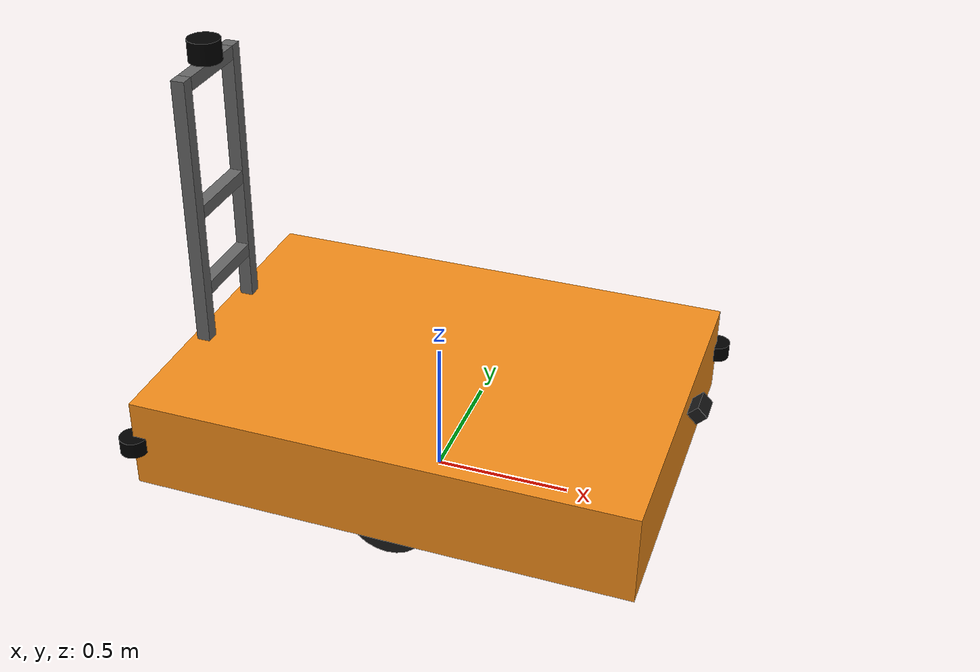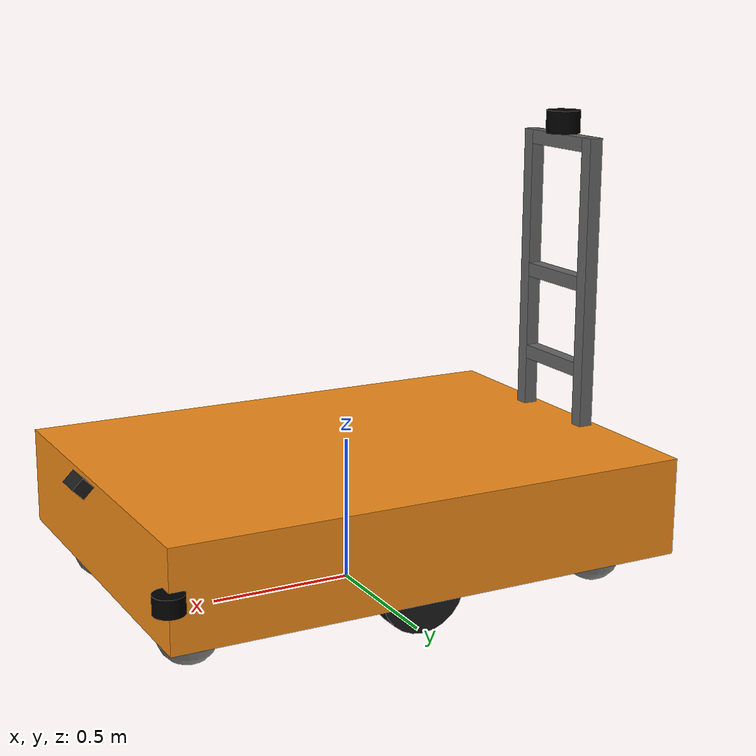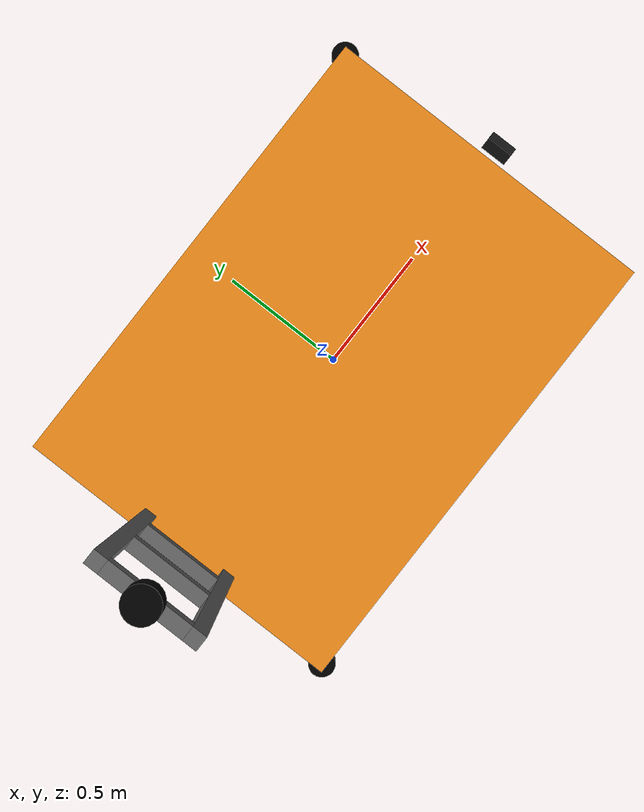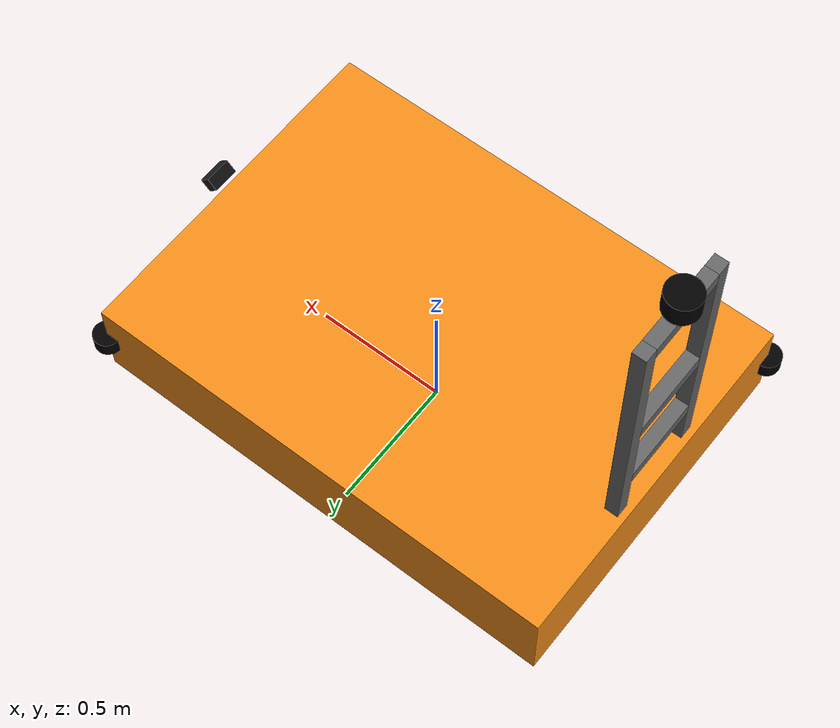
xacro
<?xml version="1.0"?>
<robot name="amr">

    <!-- Base footprint -->
    <link name="base_footprint">
        <inertial>
            <origin xyz="0 0 0.317" rpy="0 0 0"/>
            <mass value="250.0"/>
            <inertia ixx="45.0" ixy="0.0" ixz="0.0" iyy="75.0" iyz="0.0" izz="105.0"/>
        </inertial>
        <collision>
            <origin xyz="0 0 0.317" rpy="0 0 0"/>
            <geometry>
                <box size="1.8 1.3 0.334"/>
            </geometry>
        </collision>
        <visual>
            <origin xyz="0 0 0.317" rpy="0 0 0"/>
            <geometry>
                <box size="1.8 1.3 0.334"/>
            </geometry>
        </visual>
    </link>

    <gazebo reference="base_footprint">
        <material>Gazebo/Orange</material>
    </gazebo>

    <!-- Left wheel -->
    <link name="left_wheel">
        <inertial>
            <origin xyz="0 0 0" rpy="1.5708 0 0"/>
            <mass value="5.0"/>
            <inertia ixx="0.03" ixy="0.0" ixz="0.0" iyy="0.03" iyz="0.0" izz="0.05"/>
        </inertial>
        <visual>
            <origin xyz="0 0 0" rpy="1.5708 0 0"/>
            <geometry>
                <cylinder radius="0.15" length="0.08"/>
            </geometry>
            <material name="black">
                <color rgba="0.1 0.1 0.1 1.0"/>
            </material>
        </visual>
        <collision>
            <origin xyz="0 0 0" rpy="1.5708 0 0"/>
            <geometry>
                <cylinder radius="0.15" length="0.08"/>
            </geometry>
        </collision>
    </link>

    <joint name="left_wheel_joint" type="continuous">
        <parent link="base_footprint"/>
        <child link="left_wheel"/>
        <origin xyz="0 0.5 0.15" rpy="0 0 0"/>
        <axis xyz="0 1 0"/>
    </joint>

    <!-- Right wheel -->
    <link name="right_wheel">
        <inertial>
            <origin xyz="0 0 0" rpy="1.5708 0 0"/>
            <mass value="5.0"/>
            <inertia ixx="0.03" ixy="0.0" ixz="0.0" iyy="0.03" iyz="0.0" izz="0.05"/>
        </inertial>
        <visual>
            <origin xyz="0 0 0" rpy="1.5708 0 0"/>
            <geometry>
                <cylinder radius="0.15" length="0.08"/>
            </geometry>
            <material name="black">
                <color rgba="0.1 0.1 0.1 1.0"/>
            </material>
        </visual>
        <collision>
            <origin xyz="0 0 0" rpy="1.5708 0 0"/>
            <geometry>
                <cylinder radius="0.15" length="0.08"/>
            </geometry>
        </collision>
    </link>

    <joint name="right_wheel_joint" type="continuous">
        <parent link="base_footprint"/>
        <child link="right_wheel"/>
        <origin xyz="0 -0.5 0.15" rpy="0 0 0"/>
        <axis xyz="0 1 0"/>
    </joint>

    <!-- Front-left caster wheel -->
    <link name="front_left_caster_wheel">
        <inertial>
            <origin xyz="0 0 0" rpy="0 0 0"/>
            <mass value="1.0"/>
            <inertia ixx="0.004" ixy="0.0" ixz="0.0" iyy="0.004" iyz="0.0" izz="0.004"/>
        </inertial>
        <visual>
            <origin xyz="0 0 0" rpy="0 0 0"/>
            <geometry>
                <sphere radius="0.10"/>
            </geometry>
            <material name="grey">
                <color rgba="0.5 0.5 0.5 1.0"/>
            </material>
        </visual>
        <collision>
            <origin xyz="0 0 0" rpy="0 0 0"/>
            <geometry>
                <sphere radius="0.10"/>
            </geometry>
        </collision>
    </link>

    <joint name="front_left_caster_joint" type="fixed">
        <parent link="base_footprint"/>
        <child link="front_left_caster_wheel"/>
        <origin xyz="0.75 0.40 0.10" rpy="0 0 0"/>
    </joint>

    <gazebo reference="front_left_caster_wheel">
        <mu1>0.0</mu1>
        <mu2>0.0</mu2>
        <material>Gazebo/DarkGrey</material>
    </gazebo>

    <!-- Front-right caster wheel -->
    <link name="front_right_caster_wheel">
        <inertial>
            <origin xyz="0 0 0" rpy="0 0 0"/>
            <mass value="1.0"/>
            <inertia ixx="0.004" ixy="0.0" ixz="0.0" iyy="0.004" iyz="0.0" izz="0.004"/>
        </inertial>
        <visual>
            <origin xyz="0 0 0" rpy="0 0 0"/>
            <geometry>
                <sphere radius="0.10"/>
            </geometry>
            <material name="grey">
                <color rgba="0.5 0.5 0.5 1.0"/>
            </material>
        </visual>
        <collision>
            <origin xyz="0 0 0" rpy="0 0 0"/>
            <geometry>
                <sphere radius="0.10"/>
            </geometry>
        </collision>
    </link>

    <joint name="front_right_caster_joint" type="fixed">
        <parent link="base_footprint"/>
        <child link="front_right_caster_wheel"/>
        <origin xyz="0.75 -0.40 0.10" rpy="0 0 0"/>
    </joint>

    <gazebo reference="front_right_caster_wheel">
        <mu1>0.0</mu1>
        <mu2>0.0</mu2>
        <material>Gazebo/DarkGrey</material>
    </gazebo>

    <!-- Rear-left caster wheel -->
    <link name="rear_left_caster_wheel">
        <inertial>
            <origin xyz="0 0 0" rpy="0 0 0"/>
            <mass value="1.0"/>
            <inertia ixx="0.004" ixy="0.0" ixz="0.0" iyy="0.004" iyz="0.0" izz="0.004"/>
        </inertial>
        <visual>
            <origin xyz="0 0 0" rpy="0 0 0"/>
            <geometry>
                <sphere radius="0.10"/>
            </geometry>
            <material name="grey">
                <color rgba="0.5 0.5 0.5 1.0"/>
            </material>
        </visual>
        <collision>
            <origin xyz="0 0 0" rpy="0 0 0"/>
            <geometry>
                <sphere radius="0.10"/>
            </geometry>
        </collision>
    </link>

    <joint name="rear_left_caster_joint" type="fixed">
        <parent link="base_footprint"/>
        <child link="rear_left_caster_wheel"/>
        <origin xyz="-0.75 0.40 0.10" rpy="0 0 0"/>
    </joint>

    <gazebo reference="rear_left_caster_wheel">
        <mu1>0.0</mu1>
        <mu2>0.0</mu2>
        <material>Gazebo/DarkGrey</material>
    </gazebo>

    <!-- Rear-right caster wheel -->
    <link name="rear_right_caster_wheel">
        <inertial>
            <origin xyz="0 0 0" rpy="0 0 0"/>
            <mass value="1.0"/>
            <inertia ixx="0.004" ixy="0.0" ixz="0.0" iyy="0.004" iyz="0.0" izz="0.004"/>
        </inertial>
        <visual>
            <origin xyz="0 0 0" rpy="0 0 0"/>
            <geometry>
                <sphere radius="0.10"/>
            </geometry>
            <material name="grey">
                <color rgba="0.5 0.5 0.5 1.0"/>
            </material>
        </visual>
        <collision>
            <origin xyz="0 0 0" rpy="0 0 0"/>
            <geometry>
                <sphere radius="0.10"/>
            </geometry>
        </collision>
    </link>

    <joint name="rear_right_caster_joint" type="fixed">
        <parent link="base_footprint"/>
        <child link="rear_right_caster_wheel"/>
        <origin xyz="-0.75 -0.40 0.10" rpy="0 0 0"/>
    </joint>

    <gazebo reference="rear_right_caster_wheel">
        <mu1>0.0</mu1>
        <mu2>0.0</mu2>
        <material>Gazebo/DarkGrey</material>
    </gazebo>

    <!-- Front-left lidar -->
    <link name="front_left_lidar_link">
        <inertial>
            <origin xyz="0 0 0" rpy="0 0 0"/>
            <mass value="0.2"/>
            <inertia ixx="0.001" ixy="0.0" ixz="0.0" iyy="0.001" iyz="0.0" izz="0.001"/>
        </inertial>
        <visual>
            <origin xyz="0 0 0" rpy="0 0 0"/>
            <geometry>
                <cylinder radius="0.05" length="0.06"/>
            </geometry>
            <material name="invisible">
                <color rgba="0 0 0 0"/>
            </material>
        </visual>
        <collision>
            <origin xyz="0 0 0" rpy="0 0 0"/>
            <geometry>
                <cylinder radius="0.05" length="0.06"/>
            </geometry>
        </collision>
    </link>

    <joint name="front_left_lidar_joint" type="fixed">
        <parent link="base_footprint"/>
        <child link="front_left_lidar_link"/>
        <origin xyz="0.90 0.65 0.317" rpy="0 0 0.785"/>
    </joint>

    <gazebo reference="front_left_lidar_link">
        <material>Gazebo/Red</material>
        <sensor type="ray" name="front_left_lidar_sensor">
            <pose>0 0 0 0 0 0</pose>
            <visualize>false</visualize>
            <update_rate>10</update_rate>
            <ray>
                <scan>
                    <horizontal>
                        <samples>360</samples>
                        <resolution>1</resolution>
                        <min_angle>-2.18166</min_angle>
                        <max_angle>2.18166</max_angle>
                    </horizontal>
                </scan>
                <range>
                    <min>0.15</min>
                    <max>12.0</max>
                    <resolution>0.01</resolution>
                </range>
            </ray>
            <plugin name="gazebo_ros_front_left_lidar_controller" filename="libgazebo_ros_laser.so">
                <topicName>/scan_front_left</topicName>
                <frameName>front_left_lidar_link</frameName>
            </plugin>
        </sensor>
    </gazebo>

    <!-- Rear-right lidar -->
    <link name="rear_right_lidar_link">
        <inertial>
            <origin xyz="0 0 0" rpy="0 0 0"/>
            <mass value="0.2"/>
            <inertia ixx="0.001" ixy="0.0" ixz="0.0" iyy="0.001" iyz="0.0" izz="0.001"/>
        </inertial>
        <visual>
            <origin xyz="0 0 0" rpy="0 0 0"/>
            <geometry>
                <cylinder radius="0.05" length="0.06"/>
            </geometry>
            <material name="invisible">
                <color rgba="0 0 0 0"/>
            </material>
        </visual>
        <collision>
            <origin xyz="0 0 0" rpy="0 0 0"/>
            <geometry>
                <cylinder radius="0.05" length="0.06"/>
            </geometry>
        </collision>
    </link>

    <joint name="rear_right_lidar_joint" type="fixed">
        <parent link="base_footprint"/>
        <child link="rear_right_lidar_link"/>
        <origin xyz="-0.90 -0.65 0.317" rpy="0 0 -2.356"/>
    </joint>

    <gazebo reference="rear_right_lidar_link">
        <material>Gazebo/Red</material>
        <sensor type="ray" name="rear_right_lidar_sensor">
            <pose>0 0 0 0 0 0</pose>
            <visualize>false</visualize>
            <update_rate>10</update_rate>
            <ray>
                <scan>
                    <horizontal>
                        <samples>360</samples>
                        <resolution>1</resolution>
                        <min_angle>-2.18166</min_angle>
                        <max_angle>2.18166</max_angle>
                    </horizontal>
                </scan>
                <range>
                    <min>0.15</min>
                    <max>12.0</max>
                    <resolution>0.01</resolution>
                </range>
            </ray>
            <plugin name="gazebo_ros_rear_right_lidar_controller" filename="libgazebo_ros_laser.so">
                <topicName>/scan_rear_right</topicName>
                <frameName>rear_right_lidar_link</frameName>
            </plugin>
        </sensor>
    </gazebo>

    <!-- Top lidar -->
    <link name="top_lidar_link">
        <inertial>
            <origin xyz="0 0 0" rpy="0 0 0"/>
            <mass value="0.5"/>
            <inertia ixx="0.001" ixy="0.0" ixz="0.0" iyy="0.001" iyz="0.0" izz="0.001"/>
        </inertial>
        <visual>
            <origin xyz="0 0 0" rpy="0 0 0"/>
            <geometry>
                <cylinder radius="0.06" length="0.08"/>
            </geometry>
            <material name="invisible">
                <color rgba="0 0 0 0"/>
            </material>
        </visual>
        <collision>
            <origin xyz="0 0 0" rpy="0 0 0"/>
            <geometry>
                <cylinder radius="0.06" length="0.08"/>
            </geometry>
        </collision>
    </link>

    <joint name="top_lidar_joint" type="fixed">
        <parent link="base_footprint"/>
        <child link="top_lidar_link"/>
        <origin xyz="-0.85 0.0 1.54" rpy="0 0 0"/>
    </joint>

    <gazebo reference="top_lidar_link">
        <material>Gazebo/Blue</material>
        <sensor type="ray" name="top_lidar_sensor">
            <pose>0 0 0 0 0 0</pose>
            <visualize>false</visualize>
            <update_rate>15</update_rate>
            <ray>
                <scan>
                    <horizontal>
                        <samples>720</samples>
                        <resolution>1</resolution>
                        <min_angle>-3.14159</min_angle>
                        <max_angle>3.14159</max_angle>
                    </horizontal>
                </scan>
                <range>
                    <min>0.20</min>
                    <max>25.0</max>
                    <resolution>0.01</resolution>
                </range>
            </ray>
            <plugin name="gazebo_ros_top_lidar_controller" filename="libgazebo_ros_laser.so">
                <topicName>/scan_top</topicName>
                <frameName>top_lidar_link</frameName>
            </plugin>
        </sensor>
    </gazebo>

    <!-- Kule -->
    <link name="kule_link">
        <inertial>
            <origin xyz="0 0 0.508" rpy="0 0 0"/>
            <mass value="5.0"/>
            <inertia ixx="0.5" ixy="0.0" ixz="0.0" iyy="0.5" iyz="0.0" izz="0.1"/>
        </inertial>
        <visual>
            <origin xyz="0 0.175 0.508" rpy="0 0 0"/>
            <geometry>
                <box size="0.05 0.05 1.016"/>
            </geometry>
            <material name="dark_grey">
                <color rgba="0.4 0.4 0.4 1.0"/>
            </material>
        </visual>
        <collision>
            <origin xyz="0 0.175 0.508" rpy="0 0 0"/>
            <geometry>
                <box size="0.05 0.05 1.016"/>
            </geometry>
        </collision>
        <visual>
            <origin xyz="0 -0.175 0.508" rpy="0 0 0"/>
            <geometry>
                <box size="0.05 0.05 1.016"/>
            </geometry>
            <material name="dark_grey">
                <color rgba="0.4 0.4 0.4 1.0"/>
            </material>
        </visual>
        <collision>
            <origin xyz="0 -0.175 0.508" rpy="0 0 0"/>
            <geometry>
                <box size="0.05 0.05 1.016"/>
            </geometry>
        </collision>
        <visual>
            <origin xyz="0 0 0.20" rpy="0 0 0"/>
            <geometry>
                <box size="0.05 0.30 0.05"/>
            </geometry>
            <material name="dark_grey">
                <color rgba="0.4 0.4 0.4 1.0"/>
            </material>
        </visual>
        <collision>
            <origin xyz="0 0 0.20" rpy="0 0 0"/>
            <geometry>
                <box size="0.05 0.30 0.05"/>
            </geometry>
        </collision>
        <visual>
            <origin xyz="0 0 0.508" rpy="0 0 0"/>
            <geometry>
                <box size="0.05 0.30 0.05"/>
            </geometry>
            <material name="dark_grey">
                <color rgba="0.4 0.4 0.4 1.0"/>
            </material>
        </visual>
        <collision>
            <origin xyz="0 0 0.508" rpy="0 0 0"/>
            <geometry>
                <box size="0.05 0.30 0.05"/>
            </geometry>
        </collision>
        <visual>
            <origin xyz="0 0 0.991" rpy="0 0 0"/>
            <geometry>
                <box size="0.05 0.30 0.05"/>
            </geometry>
            <material name="dark_grey">
                <color rgba="0.4 0.4 0.4 1.0"/>
            </material>
        </visual>
        <collision>
            <origin xyz="0 0 0.991" rpy="0 0 0"/>
            <geometry>
                <box size="0.05 0.30 0.05"/>
            </geometry>
        </collision>
    </link>

    <joint name="kule_joint" type="fixed">
        <parent link="base_footprint"/>
        <child link="kule_link"/>
        <origin xyz="-0.850 0.0 0.484" rpy="0 0 0"/>
    </joint>

    <gazebo reference="kule_link">
        <material>Gazebo/DarkGrey</material>
    </gazebo>

    <!-- Camera -->
    <link name="camera_link">
        <inertial>
            <origin xyz="0 0 0" rpy="0 0 0"/>
            <mass value="0.1"/>
            <inertia ixx="0.0001" ixy="0" ixz="0" iyy="0.0001" iyz="0" izz="0.0001"/>
        </inertial>
        <visual>
            <origin xyz="0 0 0" rpy="0 0 0"/>
            <geometry>
                <box size="0.05 0.10 0.05"/>
            </geometry>
            <material name="black">
                <color rgba="0.1 0.1 0.1 1.0"/>
            </material>
        </visual>
        <collision>
            <origin xyz="0 0 0" rpy="0 0 0"/>
            <geometry>
                <box size="0.05 0.10 0.05"/>
            </geometry>
        </collision>
    </link>

    <joint name="camera_joint" type="fixed">
        <parent link="base_footprint"/>
        <child link="camera_link"/>
        <origin xyz="0.95 0.0 0.484" rpy="0 0.785 0"/>
    </joint>

    <gazebo reference="camera_link">
        <material>Gazebo/Black</material>
        <sensor type="camera" name="chassis_camera">
            <update_rate>30.0</update_rate>
            <camera name="front_cam">
                <horizontal_fov>1.3962634</horizontal_fov>
                <image>
                    <width>640</width>
                    <height>480</height>
                    <format>R8G8B8</format>
                </image>
                <clip>
                    <near>0.02</near>
                    <far>300</far>
                </clip>
            </camera>
            <plugin name="camera_controller" filename="libgazebo_ros_camera.so">
                <alwaysOn>true</alwaysOn>
                <updateRate>30.0</updateRate>
                <cameraName>robot/camera</cameraName>
                <imageTopicName>image_raw</imageTopicName>
                <cameraInfoTopicName>camera_info</cameraInfoTopicName>
                <frameName>camera_link</frameName>
                <distortionK1>0.0</distortionK1>
                <distortionK2>0.0</distortionK2>
                <distortionK3>0.0</distortionK3>
                <distortionT1>0.0</distortionT1>
                <distortionT2>0.0</distortionT2>
            </plugin>
        </sensor>
    </gazebo>

    <!-- Differential drive plugin -->
    <gazebo>
        <plugin name="differential_drive_controller" filename="libgazebo_ros_diff_drive.so">
            <updateRate>100</updateRate>
            <leftJoint>left_wheel_joint</leftJoint>
            <rightJoint>right_wheel_joint</rightJoint>
            <wheelSeparation>1.0</wheelSeparation>
            <wheelDiameter>0.30</wheelDiameter>
            <wheelAcceleration>3.0</wheelAcceleration>
            <wheelTorque>100</wheelTorque>
            <commandTopic>cmd_vel</commandTopic>
            <odometryTopic>odom</odometryTopic>
            <odometryFrame>odom</odometryFrame>
            <robotBaseFrame>base_footprint</robotBaseFrame>
            <publishWheelTF>false</publishWheelTF>
            <publishOdomTF>true</publishOdomTF>
            <publishWheelJointState>true</publishWheelJointState>
            <legacyMode>false</legacyMode>
        </plugin>
    </gazebo>

</robot>
